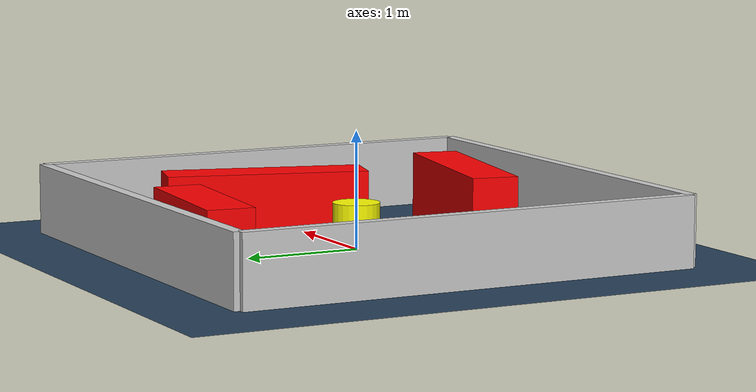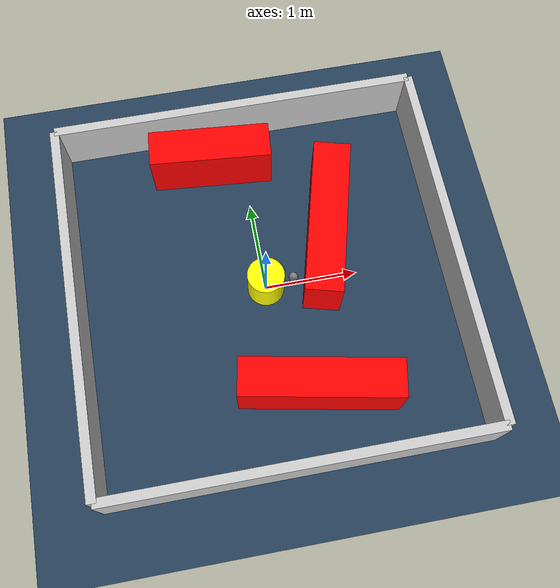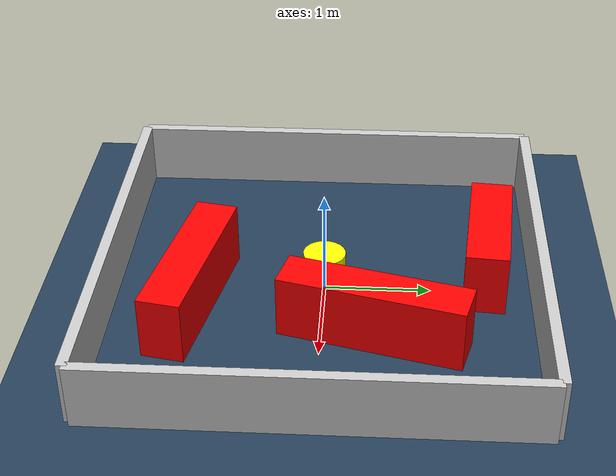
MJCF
<?xml version="1.0" ?>
<mujoco model="generated_environment">
  <option timestep="0.01" integrator="RK4" cone="elliptic"/>
  <default>
    <geom density="1"/>
  </default>
  <asset>
    <texture builtin="gradient" height="3072" rgb1="0.3 0.5 0.7" rgb2="0 0 0" type="skybox" width="512"/>
    <texture builtin="checker" height="300" mark="edge" markrgb="0.8 0.8 0.8" name="groundplane" rgb1="0.2 0.3 0.4" rgb2="0.1 0.2 0.3" type="2d" width="300"/>
    <material name="groundplane" reflectance="0.2" texrepeat="5 5" texture="groundplane" texuniform="true"/>
    <material name="robot" rgba="0.0 1.0 0.0 1"/>
  </asset>
  <worldbody>
    <light dir="0 0 -1" directional="true" pos="0 0 1.5"/>
    <geom condim="4" friction="1.0 0.005 0.001" material="groundplane" name="floor" size="0 0 0.05" type="plane"/>
    <body name="walls">
      <geom name="wall_1" condim="4" pos="-2.0 0.0 0.3" rgba="0.800000011920929 0.800000011920929 0.800000011920929 1.0" size="0.05 2.0 0.3" type="box"/>
      <geom name="wall_2" condim="4" pos="2.0 0.0 0.3" rgba="0.800000011920929 0.800000011920929 0.800000011920929 1.0" size="0.05 2.0 0.3" type="box"/>
      <geom name="wall_3" condim="4" pos="0.0 -2.0 0.3" rgba="0.800000011920929 0.800000011920929 0.800000011920929 1.0" size="2.0 0.05 0.3" type="box"/>
      <geom name="wall_4" condim="4" pos="0.0 2.0 0.3" rgba="0.800000011920929 0.800000011920929 0.800000011920929 1.0" size="2.0 0.05 0.3" type="box"/>
    </body>
    <body name="robot">
      <joint name="joint_x" type="slide" pos="0 0 0" axis="1 0 0"/>
      <joint name="joint_y" type="slide" pos="0 0 0" axis="0 1 0"/>
      <geom name="robot" type="sphere" pos="0.3 0.0 0.2" size="0.05" mass="5." friction="1.0 0.005 0.0001" condim="4" rgba="0.5 0.5 0.5 1.0"/>
      <site name="sensor_ball"/>
    </body>
    <body name="obstacle_movable_1">
      <geom name="obstacle_movable_1" condim="4" pos="0.0 0.0 0.2" euler="0 0 0.0" friction="1.0 0.005 0.001" rgba="1.0 1.0 0.0 1.0" size="0.2 0.2 0.0" type="cylinder" mass="0.1"/>
      <joint type="free"/>
    </body>
    <body name="obstacle_2_static">
      <geom name="obstacle_2_static" condim="4" pos="-0.34417962121051326 1.5496566512596626 0.3" euler="0 0 354.9864000232103" friction="1.0 0.005 0.001" rgba="1 0 0 1" size="0.6620087236804605 0.2 0.3" type="box"/>
    </body>
    <body name="obstacle_3_static">
      <geom name="obstacle_3_static" condim="4" pos="0.3318547803734613 -1.2184465186581042 0.3" euler="0 0 169.14986455430773" friction="1.0 0.005 0.001" rgba="1 0 0 1" size="0.8294004992042086 0.2 0.3" type="box"/>
    </body>
    <body name="obstacle_4_static">
      <geom name="obstacle_4_static" condim="4" pos="0.7607366450017918 0.48398814025808945 0.3" euler="0 0 75.21275364168311" friction="1.0 0.005 0.001" rgba="1 0 0 1" size="0.8604206734194904 0.2 0.3" type="box"/>
    </body>
  </worldbody>
  <actuator>
    <motor name="actuator_x" joint="joint_x" gear="1" ctrlrange="-1 1"/>
    <motor name="actuator_y" joint="joint_y" gear="1" ctrlrange="-1 1"/>
  </actuator>
</mujoco>
